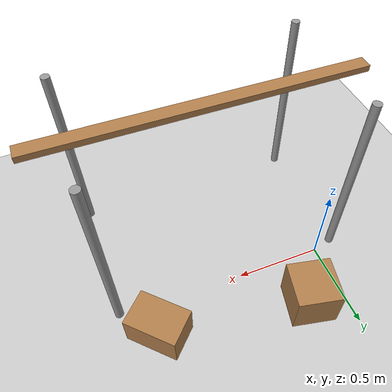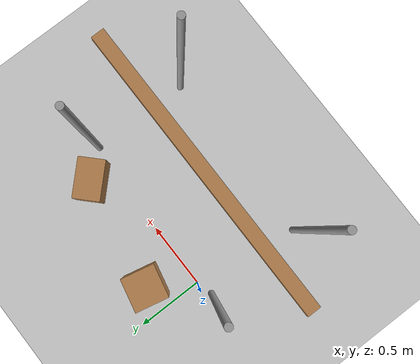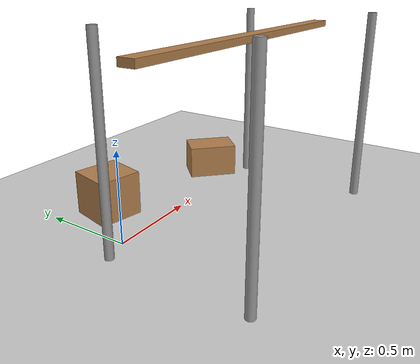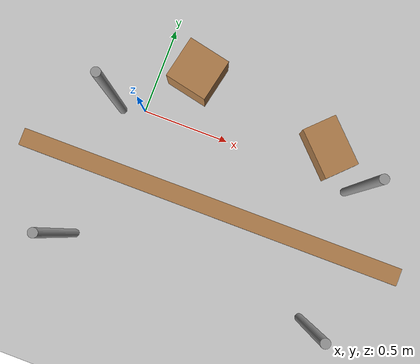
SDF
<sdf version="1.6">
 <world name="default">
  <gravity>0 0 -9.81</gravity>
  <model name="ground_plane">
   <static>1</static>
   <link name="link">
    <collision name="collision">
     <geometry><plane><normal>0 0 1</normal><size>100 100</size></plane></geometry>
     <surface><friction><ode><mu>1</mu><mu2>1</mu2></ode></friction></surface>
    </collision>
    <visual name="visual">
     <cast_shadows>0</cast_shadows>
     <geometry><plane><normal>0 0 1</normal><size>100 100</size></plane></geometry>
     <material>
      <script><uri>file://media/materials/scripts/gazebo.material</uri><name>Gazebo/Grey</name></script>
     </material>
    </visual>
   </link>
  </model>
  <light name="sun" type="directional">
   <pose>0 0 10 0 -0 0</pose>
   <diffuse>0.8 0.8 0.8 1</diffuse>
   <specular>0.2 0.2 0.2 1</specular>
   <attenuation>
    <range>1000</range>
    <constant>0.9</constant>
    <linear>0.01</linear>
    <quadratic>0.001</quadratic>
   </attenuation>
   <direction>-0.5 0.1 -0.9</direction>
  </light>
  <physics name="update_rate" default="0" type="ode">
   <real_time_update_rate>4000</real_time_update_rate>
   <max_step_size>0.00025</max_step_size>
   <max_contacts>5</max_contacts>
   <bullet>
    <solver><iters>100</iters><sor>1.55</sor><type>sequential_impulse</type></solver>
    <constraints>
     <contact_surface_layer>0.2</contact_surface_layer>
     <cfm>0.005</cfm>
     <erp>0.2</erp>
     <split_impulse>1</split_impulse>
     <split_impulse_penetration_threshold>-0.01</split_impulse_penetration_threshold>
    </constraints>
   </bullet>
   <ode>
    <solver>
     <iters>50</iters>
     <sor>1.2</sor>
     <type>quick</type>
     <use_dynamic_moi_rescaling>0</use_dynamic_moi_rescaling>
    </solver>
    <constraints>
     <contact_surface_layer>0.0002</contact_surface_layer>
     <contact_max_correcting_vel>500</contact_max_correcting_vel>
     <cfm>1e-06</cfm>
     <erp>0.3</erp>
    </constraints>
   </ode>
   <real_time_factor>1</real_time_factor>
  </physics>
  <magnetic_field>6e-06 2.3e-05 -4.2e-05</magnetic_field>
  <atmosphere type="adiabatic"/>
  <scene><ambient>0.4 0.4 0.4 1</ambient><background>0.7 0.7 0.7 1</background><shadows>1</shadows></scene>
  <spherical_coordinates>
   <surface_model>EARTH_WGS84</surface_model>
   <latitude_deg>0</latitude_deg>
   <longitude_deg>0</longitude_deg>
   <elevation>0</elevation>
   <heading_deg>0</heading_deg>
  </spherical_coordinates>
  <model name="table">
   <static>1</static>
   <link name="link">
    <collision name="surface">
     <pose>0 0 1.18 0 -0 0</pose>
     <geometry><box><size>1.8 0.08 0.0354</size></box></geometry>
     <surface><friction><ode><mu>0.3</mu><mu2>0.3</mu2></ode></friction></surface>
    </collision>
    <visual name="visual1">
     <pose>0 0 1 0 -0 0</pose>
     <geometry><box><size>1.8 0.08 0.0354</size></box></geometry>
     <material>
      <script><uri>file://media/materials/scripts/gazebo.material</uri><name>Gazebo/Wood</name></script>
     </material>
    </visual>
    <collision name="front_left_leg">
     <pose>0.68 0.38 0.5 0 -0 0</pose>
     <geometry><cylinder><radius>0.024</radius><length>1.18</length></cylinder></geometry>
    </collision>
    <visual name="front_left_leg">
     <pose>0.68 0.38 0.5 0 -0 0</pose>
     <geometry><cylinder><radius>0.024</radius><length>1.18</length></cylinder></geometry>
     <material>
      <script><uri>file://media/materials/scripts/gazebo.material</uri><name>Gazebo/Grey</name></script>
     </material>
    </visual>
    <collision name="front_right_leg">
     <pose>0.68 -0.38 0.5 0 -0 0</pose>
     <geometry><cylinder><radius>0.024</radius><length>1.18</length></cylinder></geometry>
    </collision>
    <visual name="front_right_leg">
     <pose>0.68 -0.38 0.5 0 -0 0</pose>
     <geometry><cylinder><radius>0.024</radius><length>1.18</length></cylinder></geometry>
     <material>
      <script><uri>file://media/materials/scripts/gazebo.material</uri><name>Gazebo/Grey</name></script>
     </material>
    </visual>
    <collision name="back_right_leg">
     <pose>-0.68 -0.38 0.5 0 -0 0</pose>
     <geometry><cylinder><radius>0.024</radius><length>1.18</length></cylinder></geometry>
    </collision>
    <visual name="back_right_leg">
     <pose>-0.68 -0.38 0.5 0 -0 0</pose>
     <geometry><cylinder><radius>0.024</radius><length>1.18</length></cylinder></geometry>
     <material>
      <script><uri>file://media/materials/scripts/gazebo.material</uri><name>Gazebo/Grey</name></script>
     </material>
    </visual>
    <collision name="back_left_leg">
     <pose>-0.68 0.38 0.5 0 -0 0</pose>
     <geometry><cylinder><radius>0.024</radius><length>1.18</length></cylinder></geometry>
    </collision>
    <visual name="back_left_leg">
     <pose>-0.68 0.38 0.5 0 -0 0</pose>
     <geometry><cylinder><radius>0.024</radius><length>1.18</length></cylinder></geometry>
     <material>
      <script><uri>file://media/materials/scripts/gazebo.material</uri><name>Gazebo/Grey</name></script>
     </material>
    </visual>
   </link>
   <pose>0.554598 -0.414857 0 0 -0 0</pose>
  </model>
  <model name="wood_cube_10cm">
   <link name="link">
    <pose>0 0 0.05 0 -0 0</pose>
    <inertial>
     <mass>0.5167</mass>
     <inertia>
      <ixx>0.000861167</ixx>
      <ixy>0</ixy>
      <ixz>0</ixz>
      <iyy>0.000861167</iyy>
      <iyz>0</iyz>
      <izz>0.000861167</izz>
     </inertia>
    </inertial>
    <collision name="collision">
     <geometry><box><size>0.25 0.25 0.25</size></box></geometry>
     <surface>
      <contact>
       <poissons_ratio>0.347</poissons_ratio>
       <elastic_modulus>8.8e+09</elastic_modulus>
       <ode><kp>100000</kp><kd>100</kd><max_vel>100</max_vel><min_depth>0.001</min_depth></ode>
      </contact>
      <friction>
       <torsional>
        <coefficient>1</coefficient>
        <use_patch_radius>0</use_patch_radius>
        <surface_radius>0.01</surface_radius>
       </torsional>
      </friction>
     </surface>
    </collision>
    <visual name="visual">
     <geometry><box><size>0.25 0.25 0.25</size></box></geometry>
     <material>
      <script><uri>file://media/materials/scripts/gazebo.material</uri><name>Gazebo/Wood</name></script>
     </material>
    </visual>
   </link>
   <pose>0.226169 0.345181 0.123987 3.14149 -1.57079 -1.78555</pose>
  </model>
  <model name="wood_cube_10cm_0">
   <link name="link">
    <pose>0 0 0.05 0 -0 0</pose>
    <inertial>
     <mass>0.5167</mass>
     <inertia>
      <ixx>0.000861167</ixx>
      <ixy>0</ixy>
      <ixz>0</ixz>
      <iyy>0.00286117</iyy>
      <iyz>0</iyz>
      <izz>0.000861167</izz>
     </inertia>
    </inertial>
    <collision name="collision">
     <geometry><box><size>0.2 0.3 0.2</size></box></geometry>
     <surface>
      <contact>
       <poissons_ratio>0.347</poissons_ratio>
       <elastic_modulus>8.8e+09</elastic_modulus>
       <ode><kp>100000</kp><kd>100</kd><max_vel>100</max_vel><min_depth>0.001</min_depth></ode>
      </contact>
      <friction>
       <torsional>
        <coefficient>1</coefficient>
        <use_patch_radius>0</use_patch_radius>
        <surface_radius>0.01</surface_radius>
       </torsional>
      </friction>
     </surface>
    </collision>
    <visual name="visual">
     <geometry><box><size>0.2 0.3 0.2</size></box></geometry>
     <material>
      <script><uri>file://media/materials/scripts/gazebo.material</uri><name>Gazebo/Wood</name></script>
     </material>
    </visual>
   </link>
   <pose>1.05383 0.153506 0.048987 0 0 -2.35927</pose>
  </model>
 </world>
</sdf>
